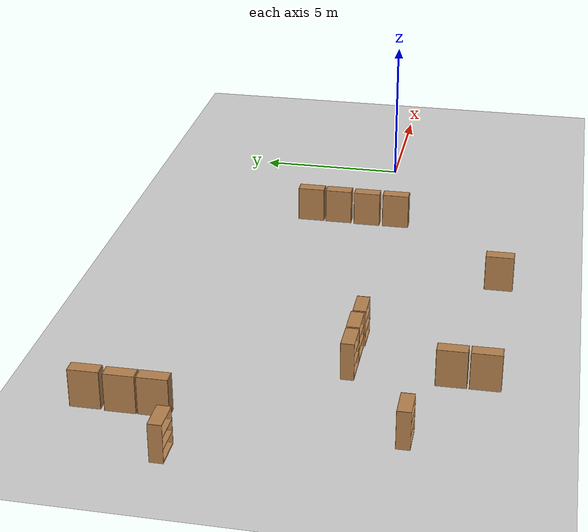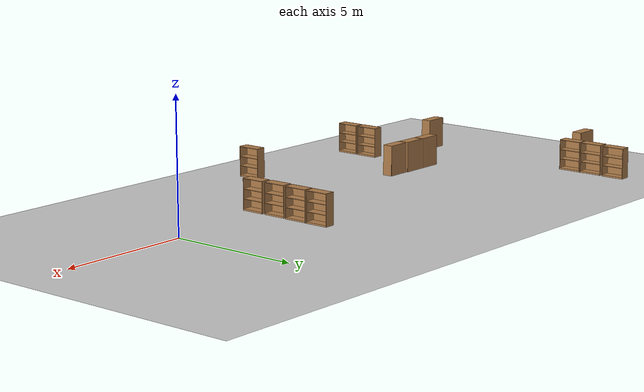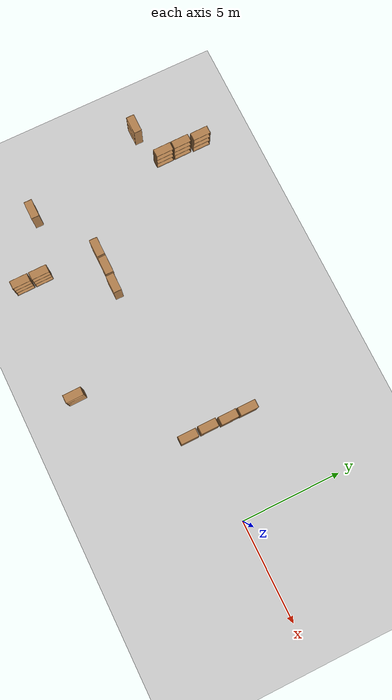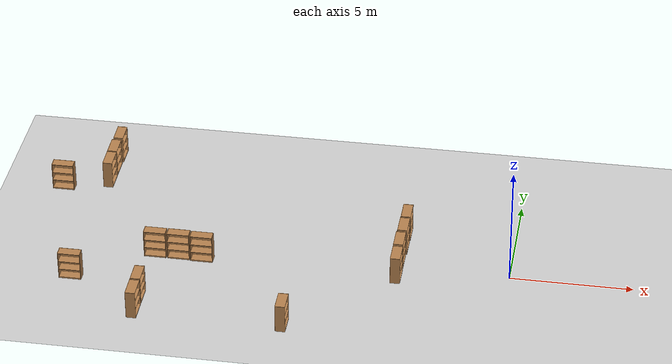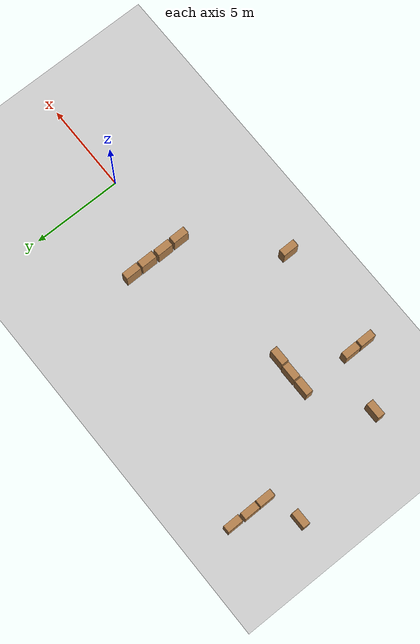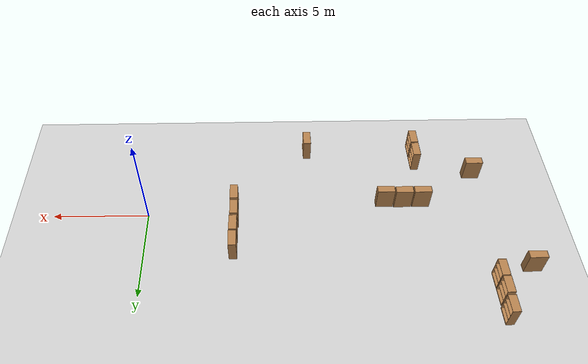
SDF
<sdf version="1.6">
 <world name="default">
  <model name="ground_plane">
   <static>1</static>
   <link name="link">
    <collision name="collision">
     <geometry><plane><normal>0 0 1</normal><size>100 100</size></plane></geometry>
     <surface>
      <contact><collide_bitmask>65535</collide_bitmask></contact>
      <friction><ode><mu>100</mu><mu2>50</mu2></ode></friction>
     </surface>
    </collision>
    <visual name="visual">
     <cast_shadows>0</cast_shadows>
     <geometry><plane><normal>0 0 1</normal><size>100 100</size></plane></geometry>
     <material>
      <script><uri>file://media/materials/scripts/gazebo.material</uri><name>Gazebo/Grey</name></script>
     </material>
    </visual>
   </link>
  </model>
  <model name="bookshelf_clone">
   <static>1</static>
   <link name="link">
    <inertial><mass>1</mass></inertial>
    <collision name="back">
     <pose>0 0.005 0.6 0 -0 0</pose>
     <geometry><box><size>0.9 0.01 1.2</size></box></geometry>
    </collision>
    <visual name="visual1">
     <pose>0 0.005 0.6 0 -0 0</pose>
     <geometry><box><size>0.9 0.01 1.2</size></box></geometry>
     <material>
      <script><uri>file://media/materials/scripts/gazebo.material</uri><name>Gazebo/Wood</name></script>
     </material>
    </visual>
    <collision name="left_side">
     <pose>0.45 -0.195 0.6 0 -0 0</pose>
     <geometry><box><size>0.02 0.4 1.2</size></box></geometry>
    </collision>
    <visual name="visual2">
     <pose>0.45 -0.195 0.6 0 -0 0</pose>
     <geometry><box><size>0.02 0.4 1.2</size></box></geometry>
     <material>
      <script><uri>file://media/materials/scripts/gazebo.material</uri><name>Gazebo/Wood</name></script>
     </material>
    </visual>
    <collision name="right_side">
     <pose>-0.45 -0.195 0.6 0 -0 0</pose>
     <geometry><box><size>0.02 0.4 1.2</size></box></geometry>
    </collision>
    <visual name="visual3">
     <pose>-0.45 -0.195 0.6 0 -0 0</pose>
     <geometry><box><size>0.02 0.4 1.2</size></box></geometry>
     <material>
      <script><uri>file://media/materials/scripts/gazebo.material</uri><name>Gazebo/Wood</name></script>
     </material>
    </visual>
    <collision name="bottom">
     <pose>0 -0.195 0.03 0 -0 0</pose>
     <geometry><box><size>0.88 0.4 0.06</size></box></geometry>
    </collision>
    <visual name="visual4">
     <pose>0 -0.195 0.03 0 -0 0</pose>
     <geometry><box><size>0.88 0.4 0.06</size></box></geometry>
     <material>
      <script><uri>file://media/materials/scripts/gazebo.material</uri><name>Gazebo/Wood</name></script>
     </material>
    </visual>
    <collision name="top">
     <pose>0 -0.195 1.19 0 -0 0</pose>
     <geometry><box><size>0.88 0.4 0.02</size></box></geometry>
    </collision>
    <visual name="visual5">
     <pose>0 -0.195 1.19 0 -0 0</pose>
     <geometry><box><size>0.88 0.4 0.02</size></box></geometry>
     <material>
      <script><uri>file://media/materials/scripts/gazebo.material</uri><name>Gazebo/Wood</name></script>
     </material>
    </visual>
    <collision name="low_shelf">
     <pose>0 -0.195 0.43 0 -0 0</pose>
     <geometry><box><size>0.88 0.4 0.02</size></box></geometry>
    </collision>
    <visual name="visual6">
     <pose>0 -0.195 0.43 0 -0 0</pose>
     <geometry><box><size>0.88 0.4 0.02</size></box></geometry>
     <material>
      <script><uri>file://media/materials/scripts/gazebo.material</uri><name>Gazebo/Wood</name></script>
     </material>
    </visual>
    <collision name="high_shelf">
     <pose>0 -0.195 0.8 0 -0 0</pose>
     <geometry><box><size>0.88 0.4 0.02</size></box></geometry>
    </collision>
    <visual name="visual7">
     <pose>0 -0.195 0.8 0 -0 0</pose>
     <geometry><box><size>0.88 0.4 0.02</size></box></geometry>
     <material>
      <script><uri>file://media/materials/scripts/gazebo.material</uri><name>Gazebo/Wood</name></script>
     </material>
    </visual>
   </link>
   <pose>-17.5274 -2.373 0 0 -0 0</pose>
  </model>
  <model name="bookshelf_clone_clone_0_clone_clone">
   <static>1</static>
   <link name="link">
    <inertial><mass>1</mass></inertial>
    <collision name="back">
     <pose>0 0.005 0.6 0 -0 0</pose>
     <geometry><box><size>0.9 0.01 1.2</size></box></geometry>
    </collision>
    <visual name="visual1">
     <pose>0 0.005 0.6 0 -0 0</pose>
     <geometry><box><size>0.9 0.01 1.2</size></box></geometry>
     <material>
      <script><uri>file://media/materials/scripts/gazebo.material</uri><name>Gazebo/Wood</name></script>
     </material>
    </visual>
    <collision name="left_side">
     <pose>0.45 -0.195 0.6 0 -0 0</pose>
     <geometry><box><size>0.02 0.4 1.2</size></box></geometry>
    </collision>
    <visual name="visual2">
     <pose>0.45 -0.195 0.6 0 -0 0</pose>
     <geometry><box><size>0.02 0.4 1.2</size></box></geometry>
     <material>
      <script><uri>file://media/materials/scripts/gazebo.material</uri><name>Gazebo/Wood</name></script>
     </material>
    </visual>
    <collision name="right_side">
     <pose>-0.45 -0.195 0.6 0 -0 0</pose>
     <geometry><box><size>0.02 0.4 1.2</size></box></geometry>
    </collision>
    <visual name="visual3">
     <pose>-0.45 -0.195 0.6 0 -0 0</pose>
     <geometry><box><size>0.02 0.4 1.2</size></box></geometry>
     <material>
      <script><uri>file://media/materials/scripts/gazebo.material</uri><name>Gazebo/Wood</name></script>
     </material>
    </visual>
    <collision name="bottom">
     <pose>0 -0.195 0.03 0 -0 0</pose>
     <geometry><box><size>0.88 0.4 0.06</size></box></geometry>
    </collision>
    <visual name="visual4">
     <pose>0 -0.195 0.03 0 -0 0</pose>
     <geometry><box><size>0.88 0.4 0.06</size></box></geometry>
     <material>
      <script><uri>file://media/materials/scripts/gazebo.material</uri><name>Gazebo/Wood</name></script>
     </material>
    </visual>
    <collision name="top">
     <pose>0 -0.195 1.19 0 -0 0</pose>
     <geometry><box><size>0.88 0.4 0.02</size></box></geometry>
    </collision>
    <visual name="visual5">
     <pose>0 -0.195 1.19 0 -0 0</pose>
     <geometry><box><size>0.88 0.4 0.02</size></box></geometry>
     <material>
      <script><uri>file://media/materials/scripts/gazebo.material</uri><name>Gazebo/Wood</name></script>
     </material>
    </visual>
    <collision name="low_shelf">
     <pose>0 -0.195 0.43 0 -0 0</pose>
     <geometry><box><size>0.88 0.4 0.02</size></box></geometry>
    </collision>
    <visual name="visual6">
     <pose>0 -0.195 0.43 0 -0 0</pose>
     <geometry><box><size>0.88 0.4 0.02</size></box></geometry>
     <material>
      <script><uri>file://media/materials/scripts/gazebo.material</uri><name>Gazebo/Wood</name></script>
     </material>
    </visual>
    <collision name="high_shelf">
     <pose>0 -0.195 0.8 0 -0 0</pose>
     <geometry><box><size>0.88 0.4 0.02</size></box></geometry>
    </collision>
    <visual name="visual7">
     <pose>0 -0.195 0.8 0 -0 0</pose>
     <geometry><box><size>0.88 0.4 0.02</size></box></geometry>
     <material>
      <script><uri>file://media/materials/scripts/gazebo.material</uri><name>Gazebo/Wood</name></script>
     </material>
    </visual>
   </link>
   <pose>-17.7016 5.36171 0 0 -0 1.58018</pose>
  </model>
  <model name="bookshelf_clone_clone_0_clone_clone_0">
   <static>1</static>
   <link name="link">
    <inertial><mass>1</mass></inertial>
    <collision name="back">
     <pose>0 0.005 0.6 0 -0 0</pose>
     <geometry><box><size>0.9 0.01 1.2</size></box></geometry>
    </collision>
    <visual name="visual1">
     <pose>0 0.005 0.6 0 -0 0</pose>
     <geometry><box><size>0.9 0.01 1.2</size></box></geometry>
     <material>
      <script><uri>file://media/materials/scripts/gazebo.material</uri><name>Gazebo/Wood</name></script>
     </material>
    </visual>
    <collision name="left_side">
     <pose>0.45 -0.195 0.6 0 -0 0</pose>
     <geometry><box><size>0.02 0.4 1.2</size></box></geometry>
    </collision>
    <visual name="visual2">
     <pose>0.45 -0.195 0.6 0 -0 0</pose>
     <geometry><box><size>0.02 0.4 1.2</size></box></geometry>
     <material>
      <script><uri>file://media/materials/scripts/gazebo.material</uri><name>Gazebo/Wood</name></script>
     </material>
    </visual>
    <collision name="right_side">
     <pose>-0.45 -0.195 0.6 0 -0 0</pose>
     <geometry><box><size>0.02 0.4 1.2</size></box></geometry>
    </collision>
    <visual name="visual3">
     <pose>-0.45 -0.195 0.6 0 -0 0</pose>
     <geometry><box><size>0.02 0.4 1.2</size></box></geometry>
     <material>
      <script><uri>file://media/materials/scripts/gazebo.material</uri><name>Gazebo/Wood</name></script>
     </material>
    </visual>
    <collision name="bottom">
     <pose>0 -0.195 0.03 0 -0 0</pose>
     <geometry><box><size>0.88 0.4 0.06</size></box></geometry>
    </collision>
    <visual name="visual4">
     <pose>0 -0.195 0.03 0 -0 0</pose>
     <geometry><box><size>0.88 0.4 0.06</size></box></geometry>
     <material>
      <script><uri>file://media/materials/scripts/gazebo.material</uri><name>Gazebo/Wood</name></script>
     </material>
    </visual>
    <collision name="top">
     <pose>0 -0.195 1.19 0 -0 0</pose>
     <geometry><box><size>0.88 0.4 0.02</size></box></geometry>
    </collision>
    <visual name="visual5">
     <pose>0 -0.195 1.19 0 -0 0</pose>
     <geometry><box><size>0.88 0.4 0.02</size></box></geometry>
     <material>
      <script><uri>file://media/materials/scripts/gazebo.material</uri><name>Gazebo/Wood</name></script>
     </material>
    </visual>
    <collision name="low_shelf">
     <pose>0 -0.195 0.43 0 -0 0</pose>
     <geometry><box><size>0.88 0.4 0.02</size></box></geometry>
    </collision>
    <visual name="visual6">
     <pose>0 -0.195 0.43 0 -0 0</pose>
     <geometry><box><size>0.88 0.4 0.02</size></box></geometry>
     <material>
      <script><uri>file://media/materials/scripts/gazebo.material</uri><name>Gazebo/Wood</name></script>
     </material>
    </visual>
    <collision name="high_shelf">
     <pose>0 -0.195 0.8 0 -0 0</pose>
     <geometry><box><size>0.88 0.4 0.02</size></box></geometry>
    </collision>
    <visual name="visual7">
     <pose>0 -0.195 0.8 0 -0 0</pose>
     <geometry><box><size>0.88 0.4 0.02</size></box></geometry>
     <material>
      <script><uri>file://media/materials/scripts/gazebo.material</uri><name>Gazebo/Wood</name></script>
     </material>
    </visual>
   </link>
   <pose>-17.6926 4.40593 0 0 -0 1.58018</pose>
  </model>
  <model name="bookshelf_clone_clone_0_clone_clone_1">
   <static>1</static>
   <link name="link">
    <inertial><mass>1</mass></inertial>
    <collision name="back">
     <pose>0 0.005 0.6 0 -0 0</pose>
     <geometry><box><size>0.9 0.01 1.2</size></box></geometry>
    </collision>
    <visual name="visual1">
     <pose>0 0.005 0.6 0 -0 0</pose>
     <geometry><box><size>0.9 0.01 1.2</size></box></geometry>
     <material>
      <script><uri>file://media/materials/scripts/gazebo.material</uri><name>Gazebo/Wood</name></script>
     </material>
    </visual>
    <collision name="left_side">
     <pose>0.45 -0.195 0.6 0 -0 0</pose>
     <geometry><box><size>0.02 0.4 1.2</size></box></geometry>
    </collision>
    <visual name="visual2">
     <pose>0.45 -0.195 0.6 0 -0 0</pose>
     <geometry><box><size>0.02 0.4 1.2</size></box></geometry>
     <material>
      <script><uri>file://media/materials/scripts/gazebo.material</uri><name>Gazebo/Wood</name></script>
     </material>
    </visual>
    <collision name="right_side">
     <pose>-0.45 -0.195 0.6 0 -0 0</pose>
     <geometry><box><size>0.02 0.4 1.2</size></box></geometry>
    </collision>
    <visual name="visual3">
     <pose>-0.45 -0.195 0.6 0 -0 0</pose>
     <geometry><box><size>0.02 0.4 1.2</size></box></geometry>
     <material>
      <script><uri>file://media/materials/scripts/gazebo.material</uri><name>Gazebo/Wood</name></script>
     </material>
    </visual>
    <collision name="bottom">
     <pose>0 -0.195 0.03 0 -0 0</pose>
     <geometry><box><size>0.88 0.4 0.06</size></box></geometry>
    </collision>
    <visual name="visual4">
     <pose>0 -0.195 0.03 0 -0 0</pose>
     <geometry><box><size>0.88 0.4 0.06</size></box></geometry>
     <material>
      <script><uri>file://media/materials/scripts/gazebo.material</uri><name>Gazebo/Wood</name></script>
     </material>
    </visual>
    <collision name="top">
     <pose>0 -0.195 1.19 0 -0 0</pose>
     <geometry><box><size>0.88 0.4 0.02</size></box></geometry>
    </collision>
    <visual name="visual5">
     <pose>0 -0.195 1.19 0 -0 0</pose>
     <geometry><box><size>0.88 0.4 0.02</size></box></geometry>
     <material>
      <script><uri>file://media/materials/scripts/gazebo.material</uri><name>Gazebo/Wood</name></script>
     </material>
    </visual>
    <collision name="low_shelf">
     <pose>0 -0.195 0.43 0 -0 0</pose>
     <geometry><box><size>0.88 0.4 0.02</size></box></geometry>
    </collision>
    <visual name="visual6">
     <pose>0 -0.195 0.43 0 -0 0</pose>
     <geometry><box><size>0.88 0.4 0.02</size></box></geometry>
     <material>
      <script><uri>file://media/materials/scripts/gazebo.material</uri><name>Gazebo/Wood</name></script>
     </material>
    </visual>
    <collision name="high_shelf">
     <pose>0 -0.195 0.8 0 -0 0</pose>
     <geometry><box><size>0.88 0.4 0.02</size></box></geometry>
    </collision>
    <visual name="visual7">
     <pose>0 -0.195 0.8 0 -0 0</pose>
     <geometry><box><size>0.88 0.4 0.02</size></box></geometry>
     <material>
      <script><uri>file://media/materials/scripts/gazebo.material</uri><name>Gazebo/Wood</name></script>
     </material>
    </visual>
   </link>
   <pose>-17.6741 6.39169 0 0 -0 1.58018</pose>
  </model>
  <model name="bookshelf_clone_clone_3">
   <static>1</static>
   <link name="link">
    <inertial><mass>1</mass></inertial>
    <collision name="back">
     <pose>0 0.005 0.6 0 -0 0</pose>
     <geometry><box><size>0.9 0.01 1.2</size></box></geometry>
    </collision>
    <visual name="visual1">
     <pose>0 0.005 0.6 0 -0 0</pose>
     <geometry><box><size>0.9 0.01 1.2</size></box></geometry>
     <material>
      <script><uri>file://media/materials/scripts/gazebo.material</uri><name>Gazebo/Wood</name></script>
     </material>
    </visual>
    <collision name="left_side">
     <pose>0.45 -0.195 0.6 0 -0 0</pose>
     <geometry><box><size>0.02 0.4 1.2</size></box></geometry>
    </collision>
    <visual name="visual2">
     <pose>0.45 -0.195 0.6 0 -0 0</pose>
     <geometry><box><size>0.02 0.4 1.2</size></box></geometry>
     <material>
      <script><uri>file://media/materials/scripts/gazebo.material</uri><name>Gazebo/Wood</name></script>
     </material>
    </visual>
    <collision name="right_side">
     <pose>-0.45 -0.195 0.6 0 -0 0</pose>
     <geometry><box><size>0.02 0.4 1.2</size></box></geometry>
    </collision>
    <visual name="visual3">
     <pose>-0.45 -0.195 0.6 0 -0 0</pose>
     <geometry><box><size>0.02 0.4 1.2</size></box></geometry>
     <material>
      <script><uri>file://media/materials/scripts/gazebo.material</uri><name>Gazebo/Wood</name></script>
     </material>
    </visual>
    <collision name="bottom">
     <pose>0 -0.195 0.03 0 -0 0</pose>
     <geometry><box><size>0.88 0.4 0.06</size></box></geometry>
    </collision>
    <visual name="visual4">
     <pose>0 -0.195 0.03 0 -0 0</pose>
     <geometry><box><size>0.88 0.4 0.06</size></box></geometry>
     <material>
      <script><uri>file://media/materials/scripts/gazebo.material</uri><name>Gazebo/Wood</name></script>
     </material>
    </visual>
    <collision name="top">
     <pose>0 -0.195 1.19 0 -0 0</pose>
     <geometry><box><size>0.88 0.4 0.02</size></box></geometry>
    </collision>
    <visual name="visual5">
     <pose>0 -0.195 1.19 0 -0 0</pose>
     <geometry><box><size>0.88 0.4 0.02</size></box></geometry>
     <material>
      <script><uri>file://media/materials/scripts/gazebo.material</uri><name>Gazebo/Wood</name></script>
     </material>
    </visual>
    <collision name="low_shelf">
     <pose>0 -0.195 0.43 0 -0 0</pose>
     <geometry><box><size>0.88 0.4 0.02</size></box></geometry>
    </collision>
    <visual name="visual6">
     <pose>0 -0.195 0.43 0 -0 0</pose>
     <geometry><box><size>0.88 0.4 0.02</size></box></geometry>
     <material>
      <script><uri>file://media/materials/scripts/gazebo.material</uri><name>Gazebo/Wood</name></script>
     </material>
    </visual>
    <collision name="high_shelf">
     <pose>0 -0.195 0.8 0 -0 0</pose>
     <geometry><box><size>0.88 0.4 0.02</size></box></geometry>
    </collision>
    <visual name="visual7">
     <pose>0 -0.195 0.8 0 -0 0</pose>
     <geometry><box><size>0.88 0.4 0.02</size></box></geometry>
     <material>
      <script><uri>file://media/materials/scripts/gazebo.material</uri><name>Gazebo/Wood</name></script>
     </material>
    </visual>
   </link>
   <pose>-19.329 3.89641 0 0 -0 0</pose>
  </model>
  <model name="bookshelf_clone_clone_0_clone_clone_0_clone">
   <static>1</static>
   <link name="link">
    <inertial><mass>1</mass></inertial>
    <collision name="back">
     <pose>0 0.005 0.6 0 -0 0</pose>
     <geometry><box><size>0.9 0.01 1.2</size></box></geometry>
    </collision>
    <visual name="visual1">
     <pose>0 0.005 0.6 0 -0 0</pose>
     <geometry><box><size>0.9 0.01 1.2</size></box></geometry>
     <material>
      <script><uri>file://media/materials/scripts/gazebo.material</uri><name>Gazebo/Wood</name></script>
     </material>
    </visual>
    <collision name="left_side">
     <pose>0.45 -0.195 0.6 0 -0 0</pose>
     <geometry><box><size>0.02 0.4 1.2</size></box></geometry>
    </collision>
    <visual name="visual2">
     <pose>0.45 -0.195 0.6 0 -0 0</pose>
     <geometry><box><size>0.02 0.4 1.2</size></box></geometry>
     <material>
      <script><uri>file://media/materials/scripts/gazebo.material</uri><name>Gazebo/Wood</name></script>
     </material>
    </visual>
    <collision name="right_side">
     <pose>-0.45 -0.195 0.6 0 -0 0</pose>
     <geometry><box><size>0.02 0.4 1.2</size></box></geometry>
    </collision>
    <visual name="visual3">
     <pose>-0.45 -0.195 0.6 0 -0 0</pose>
     <geometry><box><size>0.02 0.4 1.2</size></box></geometry>
     <material>
      <script><uri>file://media/materials/scripts/gazebo.material</uri><name>Gazebo/Wood</name></script>
     </material>
    </visual>
    <collision name="bottom">
     <pose>0 -0.195 0.03 0 -0 0</pose>
     <geometry><box><size>0.88 0.4 0.06</size></box></geometry>
    </collision>
    <visual name="visual4">
     <pose>0 -0.195 0.03 0 -0 0</pose>
     <geometry><box><size>0.88 0.4 0.06</size></box></geometry>
     <material>
      <script><uri>file://media/materials/scripts/gazebo.material</uri><name>Gazebo/Wood</name></script>
     </material>
    </visual>
    <collision name="top">
     <pose>0 -0.195 1.19 0 -0 0</pose>
     <geometry><box><size>0.88 0.4 0.02</size></box></geometry>
    </collision>
    <visual name="visual5">
     <pose>0 -0.195 1.19 0 -0 0</pose>
     <geometry><box><size>0.88 0.4 0.02</size></box></geometry>
     <material>
      <script><uri>file://media/materials/scripts/gazebo.material</uri><name>Gazebo/Wood</name></script>
     </material>
    </visual>
    <collision name="low_shelf">
     <pose>0 -0.195 0.43 0 -0 0</pose>
     <geometry><box><size>0.88 0.4 0.02</size></box></geometry>
    </collision>
    <visual name="visual6">
     <pose>0 -0.195 0.43 0 -0 0</pose>
     <geometry><box><size>0.88 0.4 0.02</size></box></geometry>
     <material>
      <script><uri>file://media/materials/scripts/gazebo.material</uri><name>Gazebo/Wood</name></script>
     </material>
    </visual>
    <collision name="high_shelf">
     <pose>0 -0.195 0.8 0 -0 0</pose>
     <geometry><box><size>0.88 0.4 0.02</size></box></geometry>
    </collision>
    <visual name="visual7">
     <pose>0 -0.195 0.8 0 -0 0</pose>
     <geometry><box><size>0.88 0.4 0.02</size></box></geometry>
     <material>
      <script><uri>file://media/materials/scripts/gazebo.material</uri><name>Gazebo/Wood</name></script>
     </material>
    </visual>
   </link>
   <pose>-14.7167 -3.5316 0 0 -0 1.58018</pose>
  </model>
  <model name="bookshelf_clone_clone_0_clone_clone_0_clone_0">
   <static>1</static>
   <link name="link">
    <inertial><mass>1</mass></inertial>
    <collision name="back">
     <pose>0 0.005 0.6 0 -0 0</pose>
     <geometry><box><size>0.9 0.01 1.2</size></box></geometry>
    </collision>
    <visual name="visual1">
     <pose>0 0.005 0.6 0 -0 0</pose>
     <geometry><box><size>0.9 0.01 1.2</size></box></geometry>
     <material>
      <script><uri>file://media/materials/scripts/gazebo.material</uri><name>Gazebo/Wood</name></script>
     </material>
    </visual>
    <collision name="left_side">
     <pose>0.45 -0.195 0.6 0 -0 0</pose>
     <geometry><box><size>0.02 0.4 1.2</size></box></geometry>
    </collision>
    <visual name="visual2">
     <pose>0.45 -0.195 0.6 0 -0 0</pose>
     <geometry><box><size>0.02 0.4 1.2</size></box></geometry>
     <material>
      <script><uri>file://media/materials/scripts/gazebo.material</uri><name>Gazebo/Wood</name></script>
     </material>
    </visual>
    <collision name="right_side">
     <pose>-0.45 -0.195 0.6 0 -0 0</pose>
     <geometry><box><size>0.02 0.4 1.2</size></box></geometry>
    </collision>
    <visual name="visual3">
     <pose>-0.45 -0.195 0.6 0 -0 0</pose>
     <geometry><box><size>0.02 0.4 1.2</size></box></geometry>
     <material>
      <script><uri>file://media/materials/scripts/gazebo.material</uri><name>Gazebo/Wood</name></script>
     </material>
    </visual>
    <collision name="bottom">
     <pose>0 -0.195 0.03 0 -0 0</pose>
     <geometry><box><size>0.88 0.4 0.06</size></box></geometry>
    </collision>
    <visual name="visual4">
     <pose>0 -0.195 0.03 0 -0 0</pose>
     <geometry><box><size>0.88 0.4 0.06</size></box></geometry>
     <material>
      <script><uri>file://media/materials/scripts/gazebo.material</uri><name>Gazebo/Wood</name></script>
     </material>
    </visual>
    <collision name="top">
     <pose>0 -0.195 1.19 0 -0 0</pose>
     <geometry><box><size>0.88 0.4 0.02</size></box></geometry>
    </collision>
    <visual name="visual5">
     <pose>0 -0.195 1.19 0 -0 0</pose>
     <geometry><box><size>0.88 0.4 0.02</size></box></geometry>
     <material>
      <script><uri>file://media/materials/scripts/gazebo.material</uri><name>Gazebo/Wood</name></script>
     </material>
    </visual>
    <collision name="low_shelf">
     <pose>0 -0.195 0.43 0 -0 0</pose>
     <geometry><box><size>0.88 0.4 0.02</size></box></geometry>
    </collision>
    <visual name="visual6">
     <pose>0 -0.195 0.43 0 -0 0</pose>
     <geometry><box><size>0.88 0.4 0.02</size></box></geometry>
     <material>
      <script><uri>file://media/materials/scripts/gazebo.material</uri><name>Gazebo/Wood</name></script>
     </material>
    </visual>
    <collision name="high_shelf">
     <pose>0 -0.195 0.8 0 -0 0</pose>
     <geometry><box><size>0.88 0.4 0.02</size></box></geometry>
    </collision>
    <visual name="visual7">
     <pose>0 -0.195 0.8 0 -0 0</pose>
     <geometry><box><size>0.88 0.4 0.02</size></box></geometry>
     <material>
      <script><uri>file://media/materials/scripts/gazebo.material</uri><name>Gazebo/Wood</name></script>
     </material>
    </visual>
   </link>
   <pose>-14.7086 -4.5102 0 0 -0 1.58018</pose>
  </model>
  <model name="bookshelf_clone_clone_2_clone">
   <static>1</static>
   <link name="link">
    <inertial><mass>1</mass></inertial>
    <collision name="back">
     <pose>0 0.005 0.6 0 -0 0</pose>
     <geometry><box><size>0.9 0.01 1.2</size></box></geometry>
    </collision>
    <visual name="visual1">
     <pose>0 0.005 0.6 0 -0 0</pose>
     <geometry><box><size>0.9 0.01 1.2</size></box></geometry>
     <material>
      <script><uri>file://media/materials/scripts/gazebo.material</uri><name>Gazebo/Wood</name></script>
     </material>
    </visual>
    <collision name="left_side">
     <pose>0.45 -0.195 0.6 0 -0 0</pose>
     <geometry><box><size>0.02 0.4 1.2</size></box></geometry>
    </collision>
    <visual name="visual2">
     <pose>0.45 -0.195 0.6 0 -0 0</pose>
     <geometry><box><size>0.02 0.4 1.2</size></box></geometry>
     <material>
      <script><uri>file://media/materials/scripts/gazebo.material</uri><name>Gazebo/Wood</name></script>
     </material>
    </visual>
    <collision name="right_side">
     <pose>-0.45 -0.195 0.6 0 -0 0</pose>
     <geometry><box><size>0.02 0.4 1.2</size></box></geometry>
    </collision>
    <visual name="visual3">
     <pose>-0.45 -0.195 0.6 0 -0 0</pose>
     <geometry><box><size>0.02 0.4 1.2</size></box></geometry>
     <material>
      <script><uri>file://media/materials/scripts/gazebo.material</uri><name>Gazebo/Wood</name></script>
     </material>
    </visual>
    <collision name="bottom">
     <pose>0 -0.195 0.03 0 -0 0</pose>
     <geometry><box><size>0.88 0.4 0.06</size></box></geometry>
    </collision>
    <visual name="visual4">
     <pose>0 -0.195 0.03 0 -0 0</pose>
     <geometry><box><size>0.88 0.4 0.06</size></box></geometry>
     <material>
      <script><uri>file://media/materials/scripts/gazebo.material</uri><name>Gazebo/Wood</name></script>
     </material>
    </visual>
    <collision name="top">
     <pose>0 -0.195 1.19 0 -0 0</pose>
     <geometry><box><size>0.88 0.4 0.02</size></box></geometry>
    </collision>
    <visual name="visual5">
     <pose>0 -0.195 1.19 0 -0 0</pose>
     <geometry><box><size>0.88 0.4 0.02</size></box></geometry>
     <material>
      <script><uri>file://media/materials/scripts/gazebo.material</uri><name>Gazebo/Wood</name></script>
     </material>
    </visual>
    <collision name="low_shelf">
     <pose>0 -0.195 0.43 0 -0 0</pose>
     <geometry><box><size>0.88 0.4 0.02</size></box></geometry>
    </collision>
    <visual name="visual6">
     <pose>0 -0.195 0.43 0 -0 0</pose>
     <geometry><box><size>0.88 0.4 0.02</size></box></geometry>
     <material>
      <script><uri>file://media/materials/scripts/gazebo.material</uri><name>Gazebo/Wood</name></script>
     </material>
    </visual>
    <collision name="high_shelf">
     <pose>0 -0.195 0.8 0 -0 0</pose>
     <geometry><box><size>0.88 0.4 0.02</size></box></geometry>
    </collision>
    <visual name="visual7">
     <pose>0 -0.195 0.8 0 -0 0</pose>
     <geometry><box><size>0.88 0.4 0.02</size></box></geometry>
     <material>
      <script><uri>file://media/materials/scripts/gazebo.material</uri><name>Gazebo/Wood</name></script>
     </material>
    </visual>
   </link>
   <pose>-14.4458 -0.359166 0 0 -0 0</pose>
  </model>
  <model name="bookshelf_clone_clone_2_clone_0">
   <static>1</static>
   <link name="link">
    <inertial><mass>1</mass></inertial>
    <collision name="back">
     <pose>0 0.005 0.6 0 -0 0</pose>
     <geometry><box><size>0.9 0.01 1.2</size></box></geometry>
    </collision>
    <visual name="visual1">
     <pose>0 0.005 0.6 0 -0 0</pose>
     <geometry><box><size>0.9 0.01 1.2</size></box></geometry>
     <material>
      <script><uri>file://media/materials/scripts/gazebo.material</uri><name>Gazebo/Wood</name></script>
     </material>
    </visual>
    <collision name="left_side">
     <pose>0.45 -0.195 0.6 0 -0 0</pose>
     <geometry><box><size>0.02 0.4 1.2</size></box></geometry>
    </collision>
    <visual name="visual2">
     <pose>0.45 -0.195 0.6 0 -0 0</pose>
     <geometry><box><size>0.02 0.4 1.2</size></box></geometry>
     <material>
      <script><uri>file://media/materials/scripts/gazebo.material</uri><name>Gazebo/Wood</name></script>
     </material>
    </visual>
    <collision name="right_side">
     <pose>-0.45 -0.195 0.6 0 -0 0</pose>
     <geometry><box><size>0.02 0.4 1.2</size></box></geometry>
    </collision>
    <visual name="visual3">
     <pose>-0.45 -0.195 0.6 0 -0 0</pose>
     <geometry><box><size>0.02 0.4 1.2</size></box></geometry>
     <material>
      <script><uri>file://media/materials/scripts/gazebo.material</uri><name>Gazebo/Wood</name></script>
     </material>
    </visual>
    <collision name="bottom">
     <pose>0 -0.195 0.03 0 -0 0</pose>
     <geometry><box><size>0.88 0.4 0.06</size></box></geometry>
    </collision>
    <visual name="visual4">
     <pose>0 -0.195 0.03 0 -0 0</pose>
     <geometry><box><size>0.88 0.4 0.06</size></box></geometry>
     <material>
      <script><uri>file://media/materials/scripts/gazebo.material</uri><name>Gazebo/Wood</name></script>
     </material>
    </visual>
    <collision name="top">
     <pose>0 -0.195 1.19 0 -0 0</pose>
     <geometry><box><size>0.88 0.4 0.02</size></box></geometry>
    </collision>
    <visual name="visual5">
     <pose>0 -0.195 1.19 0 -0 0</pose>
     <geometry><box><size>0.88 0.4 0.02</size></box></geometry>
     <material>
      <script><uri>file://media/materials/scripts/gazebo.material</uri><name>Gazebo/Wood</name></script>
     </material>
    </visual>
    <collision name="low_shelf">
     <pose>0 -0.195 0.43 0 -0 0</pose>
     <geometry><box><size>0.88 0.4 0.02</size></box></geometry>
    </collision>
    <visual name="visual6">
     <pose>0 -0.195 0.43 0 -0 0</pose>
     <geometry><box><size>0.88 0.4 0.02</size></box></geometry>
     <material>
      <script><uri>file://media/materials/scripts/gazebo.material</uri><name>Gazebo/Wood</name></script>
     </material>
    </visual>
    <collision name="high_shelf">
     <pose>0 -0.195 0.8 0 -0 0</pose>
     <geometry><box><size>0.88 0.4 0.02</size></box></geometry>
    </collision>
    <visual name="visual7">
     <pose>0 -0.195 0.8 0 -0 0</pose>
     <geometry><box><size>0.88 0.4 0.02</size></box></geometry>
     <material>
      <script><uri>file://media/materials/scripts/gazebo.material</uri><name>Gazebo/Wood</name></script>
     </material>
    </visual>
   </link>
   <pose>-13.4772 -0.35819 0 0 -0 0</pose>
  </model>
  <model name="bookshelf_clone_clone_2_clone_1">
   <static>1</static>
   <link name="link">
    <inertial><mass>1</mass></inertial>
    <collision name="back">
     <pose>0 0.005 0.6 0 -0 0</pose>
     <geometry><box><size>0.9 0.01 1.2</size></box></geometry>
    </collision>
    <visual name="visual1">
     <pose>0 0.005 0.6 0 -0 0</pose>
     <geometry><box><size>0.9 0.01 1.2</size></box></geometry>
     <material>
      <script><uri>file://media/materials/scripts/gazebo.material</uri><name>Gazebo/Wood</name></script>
     </material>
    </visual>
    <collision name="left_side">
     <pose>0.45 -0.195 0.6 0 -0 0</pose>
     <geometry><box><size>0.02 0.4 1.2</size></box></geometry>
    </collision>
    <visual name="visual2">
     <pose>0.45 -0.195 0.6 0 -0 0</pose>
     <geometry><box><size>0.02 0.4 1.2</size></box></geometry>
     <material>
      <script><uri>file://media/materials/scripts/gazebo.material</uri><name>Gazebo/Wood</name></script>
     </material>
    </visual>
    <collision name="right_side">
     <pose>-0.45 -0.195 0.6 0 -0 0</pose>
     <geometry><box><size>0.02 0.4 1.2</size></box></geometry>
    </collision>
    <visual name="visual3">
     <pose>-0.45 -0.195 0.6 0 -0 0</pose>
     <geometry><box><size>0.02 0.4 1.2</size></box></geometry>
     <material>
      <script><uri>file://media/materials/scripts/gazebo.material</uri><name>Gazebo/Wood</name></script>
     </material>
    </visual>
    <collision name="bottom">
     <pose>0 -0.195 0.03 0 -0 0</pose>
     <geometry><box><size>0.88 0.4 0.06</size></box></geometry>
    </collision>
    <visual name="visual4">
     <pose>0 -0.195 0.03 0 -0 0</pose>
     <geometry><box><size>0.88 0.4 0.06</size></box></geometry>
     <material>
      <script><uri>file://media/materials/scripts/gazebo.material</uri><name>Gazebo/Wood</name></script>
     </material>
    </visual>
    <collision name="top">
     <pose>0 -0.195 1.19 0 -0 0</pose>
     <geometry><box><size>0.88 0.4 0.02</size></box></geometry>
    </collision>
    <visual name="visual5">
     <pose>0 -0.195 1.19 0 -0 0</pose>
     <geometry><box><size>0.88 0.4 0.02</size></box></geometry>
     <material>
      <script><uri>file://media/materials/scripts/gazebo.material</uri><name>Gazebo/Wood</name></script>
     </material>
    </visual>
    <collision name="low_shelf">
     <pose>0 -0.195 0.43 0 -0 0</pose>
     <geometry><box><size>0.88 0.4 0.02</size></box></geometry>
    </collision>
    <visual name="visual6">
     <pose>0 -0.195 0.43 0 -0 0</pose>
     <geometry><box><size>0.88 0.4 0.02</size></box></geometry>
     <material>
      <script><uri>file://media/materials/scripts/gazebo.material</uri><name>Gazebo/Wood</name></script>
     </material>
    </visual>
    <collision name="high_shelf">
     <pose>0 -0.195 0.8 0 -0 0</pose>
     <geometry><box><size>0.88 0.4 0.02</size></box></geometry>
    </collision>
    <visual name="visual7">
     <pose>0 -0.195 0.8 0 -0 0</pose>
     <geometry><box><size>0.88 0.4 0.02</size></box></geometry>
     <material>
      <script><uri>file://media/materials/scripts/gazebo.material</uri><name>Gazebo/Wood</name></script>
     </material>
    </visual>
   </link>
   <pose>-12.5139 -0.395559 0 0 -0 0</pose>
  </model>
  <model name="bookshelf_clone_clone_0_clone_clone_0_clone_2">
   <static>1</static>
   <link name="link">
    <inertial><mass>1</mass></inertial>
    <collision name="back">
     <pose>0 0.005 0.6 0 -0 0</pose>
     <geometry><box><size>0.9 0.01 1.2</size></box></geometry>
    </collision>
    <visual name="visual1">
     <pose>0 0.005 0.6 0 -0 0</pose>
     <geometry><box><size>0.9 0.01 1.2</size></box></geometry>
     <material>
      <script><uri>file://media/materials/scripts/gazebo.material</uri><name>Gazebo/Wood</name></script>
     </material>
    </visual>
    <collision name="left_side">
     <pose>0.45 -0.195 0.6 0 -0 0</pose>
     <geometry><box><size>0.02 0.4 1.2</size></box></geometry>
    </collision>
    <visual name="visual2">
     <pose>0.45 -0.195 0.6 0 -0 0</pose>
     <geometry><box><size>0.02 0.4 1.2</size></box></geometry>
     <material>
      <script><uri>file://media/materials/scripts/gazebo.material</uri><name>Gazebo/Wood</name></script>
     </material>
    </visual>
    <collision name="right_side">
     <pose>-0.45 -0.195 0.6 0 -0 0</pose>
     <geometry><box><size>0.02 0.4 1.2</size></box></geometry>
    </collision>
    <visual name="visual3">
     <pose>-0.45 -0.195 0.6 0 -0 0</pose>
     <geometry><box><size>0.02 0.4 1.2</size></box></geometry>
     <material>
      <script><uri>file://media/materials/scripts/gazebo.material</uri><name>Gazebo/Wood</name></script>
     </material>
    </visual>
    <collision name="bottom">
     <pose>0 -0.195 0.03 0 -0 0</pose>
     <geometry><box><size>0.88 0.4 0.06</size></box></geometry>
    </collision>
    <visual name="visual4">
     <pose>0 -0.195 0.03 0 -0 0</pose>
     <geometry><box><size>0.88 0.4 0.06</size></box></geometry>
     <material>
      <script><uri>file://media/materials/scripts/gazebo.material</uri><name>Gazebo/Wood</name></script>
     </material>
    </visual>
    <collision name="top">
     <pose>0 -0.195 1.19 0 -0 0</pose>
     <geometry><box><size>0.88 0.4 0.02</size></box></geometry>
    </collision>
    <visual name="visual5">
     <pose>0 -0.195 1.19 0 -0 0</pose>
     <geometry><box><size>0.88 0.4 0.02</size></box></geometry>
     <material>
      <script><uri>file://media/materials/scripts/gazebo.material</uri><name>Gazebo/Wood</name></script>
     </material>
    </visual>
    <collision name="low_shelf">
     <pose>0 -0.195 0.43 0 -0 0</pose>
     <geometry><box><size>0.88 0.4 0.02</size></box></geometry>
    </collision>
    <visual name="visual6">
     <pose>0 -0.195 0.43 0 -0 0</pose>
     <geometry><box><size>0.88 0.4 0.02</size></box></geometry>
     <material>
      <script><uri>file://media/materials/scripts/gazebo.material</uri><name>Gazebo/Wood</name></script>
     </material>
    </visual>
    <collision name="high_shelf">
     <pose>0 -0.195 0.8 0 -0 0</pose>
     <geometry><box><size>0.88 0.4 0.02</size></box></geometry>
    </collision>
    <visual name="visual7">
     <pose>0 -0.195 0.8 0 -0 0</pose>
     <geometry><box><size>0.88 0.4 0.02</size></box></geometry>
     <material>
      <script><uri>file://media/materials/scripts/gazebo.material</uri><name>Gazebo/Wood</name></script>
     </material>
    </visual>
   </link>
   <pose>-4.71181 2.42279 0 0 -0 1.58018</pose>
  </model>
  <model name="bookshelf_clone_clone_0_clone_clone_0_clone_3">
   <static>1</static>
   <link name="link">
    <inertial><mass>1</mass></inertial>
    <collision name="back">
     <pose>0 0.005 0.6 0 -0 0</pose>
     <geometry><box><size>0.9 0.01 1.2</size></box></geometry>
    </collision>
    <visual name="visual1">
     <pose>0 0.005 0.6 0 -0 0</pose>
     <geometry><box><size>0.9 0.01 1.2</size></box></geometry>
     <material>
      <script><uri>file://media/materials/scripts/gazebo.material</uri><name>Gazebo/Wood</name></script>
     </material>
    </visual>
    <collision name="left_side">
     <pose>0.45 -0.195 0.6 0 -0 0</pose>
     <geometry><box><size>0.02 0.4 1.2</size></box></geometry>
    </collision>
    <visual name="visual2">
     <pose>0.45 -0.195 0.6 0 -0 0</pose>
     <geometry><box><size>0.02 0.4 1.2</size></box></geometry>
     <material>
      <script><uri>file://media/materials/scripts/gazebo.material</uri><name>Gazebo/Wood</name></script>
     </material>
    </visual>
    <collision name="right_side">
     <pose>-0.45 -0.195 0.6 0 -0 0</pose>
     <geometry><box><size>0.02 0.4 1.2</size></box></geometry>
    </collision>
    <visual name="visual3">
     <pose>-0.45 -0.195 0.6 0 -0 0</pose>
     <geometry><box><size>0.02 0.4 1.2</size></box></geometry>
     <material>
      <script><uri>file://media/materials/scripts/gazebo.material</uri><name>Gazebo/Wood</name></script>
     </material>
    </visual>
    <collision name="bottom">
     <pose>0 -0.195 0.03 0 -0 0</pose>
     <geometry><box><size>0.88 0.4 0.06</size></box></geometry>
    </collision>
    <visual name="visual4">
     <pose>0 -0.195 0.03 0 -0 0</pose>
     <geometry><box><size>0.88 0.4 0.06</size></box></geometry>
     <material>
      <script><uri>file://media/materials/scripts/gazebo.material</uri><name>Gazebo/Wood</name></script>
     </material>
    </visual>
    <collision name="top">
     <pose>0 -0.195 1.19 0 -0 0</pose>
     <geometry><box><size>0.88 0.4 0.02</size></box></geometry>
    </collision>
    <visual name="visual5">
     <pose>0 -0.195 1.19 0 -0 0</pose>
     <geometry><box><size>0.88 0.4 0.02</size></box></geometry>
     <material>
      <script><uri>file://media/materials/scripts/gazebo.material</uri><name>Gazebo/Wood</name></script>
     </material>
    </visual>
    <collision name="low_shelf">
     <pose>0 -0.195 0.43 0 -0 0</pose>
     <geometry><box><size>0.88 0.4 0.02</size></box></geometry>
    </collision>
    <visual name="visual6">
     <pose>0 -0.195 0.43 0 -0 0</pose>
     <geometry><box><size>0.88 0.4 0.02</size></box></geometry>
     <material>
      <script><uri>file://media/materials/scripts/gazebo.material</uri><name>Gazebo/Wood</name></script>
     </material>
    </visual>
    <collision name="high_shelf">
     <pose>0 -0.195 0.8 0 -0 0</pose>
     <geometry><box><size>0.88 0.4 0.02</size></box></geometry>
    </collision>
    <visual name="visual7">
     <pose>0 -0.195 0.8 0 -0 0</pose>
     <geometry><box><size>0.88 0.4 0.02</size></box></geometry>
     <material>
      <script><uri>file://media/materials/scripts/gazebo.material</uri><name>Gazebo/Wood</name></script>
     </material>
    </visual>
   </link>
   <pose>-4.71568 1.4428 0 0 -0 1.58018</pose>
  </model>
  <model name="bookshelf_clone_clone_0_clone_clone_0_clone_4">
   <static>1</static>
   <link name="link">
    <inertial><mass>1</mass></inertial>
    <collision name="back">
     <pose>0 0.005 0.6 0 -0 0</pose>
     <geometry><box><size>0.9 0.01 1.2</size></box></geometry>
    </collision>
    <visual name="visual1">
     <pose>0 0.005 0.6 0 -0 0</pose>
     <geometry><box><size>0.9 0.01 1.2</size></box></geometry>
     <material>
      <script><uri>file://media/materials/scripts/gazebo.material</uri><name>Gazebo/Wood</name></script>
     </material>
    </visual>
    <collision name="left_side">
     <pose>0.45 -0.195 0.6 0 -0 0</pose>
     <geometry><box><size>0.02 0.4 1.2</size></box></geometry>
    </collision>
    <visual name="visual2">
     <pose>0.45 -0.195 0.6 0 -0 0</pose>
     <geometry><box><size>0.02 0.4 1.2</size></box></geometry>
     <material>
      <script><uri>file://media/materials/scripts/gazebo.material</uri><name>Gazebo/Wood</name></script>
     </material>
    </visual>
    <collision name="right_side">
     <pose>-0.45 -0.195 0.6 0 -0 0</pose>
     <geometry><box><size>0.02 0.4 1.2</size></box></geometry>
    </collision>
    <visual name="visual3">
     <pose>-0.45 -0.195 0.6 0 -0 0</pose>
     <geometry><box><size>0.02 0.4 1.2</size></box></geometry>
     <material>
      <script><uri>file://media/materials/scripts/gazebo.material</uri><name>Gazebo/Wood</name></script>
     </material>
    </visual>
    <collision name="bottom">
     <pose>0 -0.195 0.03 0 -0 0</pose>
     <geometry><box><size>0.88 0.4 0.06</size></box></geometry>
    </collision>
    <visual name="visual4">
     <pose>0 -0.195 0.03 0 -0 0</pose>
     <geometry><box><size>0.88 0.4 0.06</size></box></geometry>
     <material>
      <script><uri>file://media/materials/scripts/gazebo.material</uri><name>Gazebo/Wood</name></script>
     </material>
    </visual>
    <collision name="top">
     <pose>0 -0.195 1.19 0 -0 0</pose>
     <geometry><box><size>0.88 0.4 0.02</size></box></geometry>
    </collision>
    <visual name="visual5">
     <pose>0 -0.195 1.19 0 -0 0</pose>
     <geometry><box><size>0.88 0.4 0.02</size></box></geometry>
     <material>
      <script><uri>file://media/materials/scripts/gazebo.material</uri><name>Gazebo/Wood</name></script>
     </material>
    </visual>
    <collision name="low_shelf">
     <pose>0 -0.195 0.43 0 -0 0</pose>
     <geometry><box><size>0.88 0.4 0.02</size></box></geometry>
    </collision>
    <visual name="visual6">
     <pose>0 -0.195 0.43 0 -0 0</pose>
     <geometry><box><size>0.88 0.4 0.02</size></box></geometry>
     <material>
      <script><uri>file://media/materials/scripts/gazebo.material</uri><name>Gazebo/Wood</name></script>
     </material>
    </visual>
    <collision name="high_shelf">
     <pose>0 -0.195 0.8 0 -0 0</pose>
     <geometry><box><size>0.88 0.4 0.02</size></box></geometry>
    </collision>
    <visual name="visual7">
     <pose>0 -0.195 0.8 0 -0 0</pose>
     <geometry><box><size>0.88 0.4 0.02</size></box></geometry>
     <material>
      <script><uri>file://media/materials/scripts/gazebo.material</uri><name>Gazebo/Wood</name></script>
     </material>
    </visual>
   </link>
   <pose>-4.73977 0.422899 0 0 -0 1.58018</pose>
  </model>
  <model name="bookshelf_clone_clone_0_clone_clone_0_clone_5">
   <static>1</static>
   <link name="link">
    <inertial><mass>1</mass></inertial>
    <collision name="back">
     <pose>0 0.005 0.6 0 -0 0</pose>
     <geometry><box><size>0.9 0.01 1.2</size></box></geometry>
    </collision>
    <visual name="visual1">
     <pose>0 0.005 0.6 0 -0 0</pose>
     <geometry><box><size>0.9 0.01 1.2</size></box></geometry>
     <material>
      <script><uri>file://media/materials/scripts/gazebo.material</uri><name>Gazebo/Wood</name></script>
     </material>
    </visual>
    <collision name="left_side">
     <pose>0.45 -0.195 0.6 0 -0 0</pose>
     <geometry><box><size>0.02 0.4 1.2</size></box></geometry>
    </collision>
    <visual name="visual2">
     <pose>0.45 -0.195 0.6 0 -0 0</pose>
     <geometry><box><size>0.02 0.4 1.2</size></box></geometry>
     <material>
      <script><uri>file://media/materials/scripts/gazebo.material</uri><name>Gazebo/Wood</name></script>
     </material>
    </visual>
    <collision name="right_side">
     <pose>-0.45 -0.195 0.6 0 -0 0</pose>
     <geometry><box><size>0.02 0.4 1.2</size></box></geometry>
    </collision>
    <visual name="visual3">
     <pose>-0.45 -0.195 0.6 0 -0 0</pose>
     <geometry><box><size>0.02 0.4 1.2</size></box></geometry>
     <material>
      <script><uri>file://media/materials/scripts/gazebo.material</uri><name>Gazebo/Wood</name></script>
     </material>
    </visual>
    <collision name="bottom">
     <pose>0 -0.195 0.03 0 -0 0</pose>
     <geometry><box><size>0.88 0.4 0.06</size></box></geometry>
    </collision>
    <visual name="visual4">
     <pose>0 -0.195 0.03 0 -0 0</pose>
     <geometry><box><size>0.88 0.4 0.06</size></box></geometry>
     <material>
      <script><uri>file://media/materials/scripts/gazebo.material</uri><name>Gazebo/Wood</name></script>
     </material>
    </visual>
    <collision name="top">
     <pose>0 -0.195 1.19 0 -0 0</pose>
     <geometry><box><size>0.88 0.4 0.02</size></box></geometry>
    </collision>
    <visual name="visual5">
     <pose>0 -0.195 1.19 0 -0 0</pose>
     <geometry><box><size>0.88 0.4 0.02</size></box></geometry>
     <material>
      <script><uri>file://media/materials/scripts/gazebo.material</uri><name>Gazebo/Wood</name></script>
     </material>
    </visual>
    <collision name="low_shelf">
     <pose>0 -0.195 0.43 0 -0 0</pose>
     <geometry><box><size>0.88 0.4 0.02</size></box></geometry>
    </collision>
    <visual name="visual6">
     <pose>0 -0.195 0.43 0 -0 0</pose>
     <geometry><box><size>0.88 0.4 0.02</size></box></geometry>
     <material>
      <script><uri>file://media/materials/scripts/gazebo.material</uri><name>Gazebo/Wood</name></script>
     </material>
    </visual>
    <collision name="high_shelf">
     <pose>0 -0.195 0.8 0 -0 0</pose>
     <geometry><box><size>0.88 0.4 0.02</size></box></geometry>
    </collision>
    <visual name="visual7">
     <pose>0 -0.195 0.8 0 -0 0</pose>
     <geometry><box><size>0.88 0.4 0.02</size></box></geometry>
     <material>
      <script><uri>file://media/materials/scripts/gazebo.material</uri><name>Gazebo/Wood</name></script>
     </material>
    </visual>
   </link>
   <pose>-4.72376 -0.597134 0 0 -0 1.58018</pose>
  </model>
  <model name="bookshelf_clone_clone_0_clone_clone_0_clone_5_clone">
   <static>1</static>
   <link name="link">
    <inertial><mass>1</mass></inertial>
    <collision name="back">
     <pose>0 0.005 0.6 0 -0 0</pose>
     <geometry><box><size>0.9 0.01 1.2</size></box></geometry>
    </collision>
    <visual name="visual1">
     <pose>0 0.005 0.6 0 -0 0</pose>
     <geometry><box><size>0.9 0.01 1.2</size></box></geometry>
     <material>
      <script><uri>file://media/materials/scripts/gazebo.material</uri><name>Gazebo/Wood</name></script>
     </material>
    </visual>
    <collision name="left_side">
     <pose>0.45 -0.195 0.6 0 -0 0</pose>
     <geometry><box><size>0.02 0.4 1.2</size></box></geometry>
    </collision>
    <visual name="visual2">
     <pose>0.45 -0.195 0.6 0 -0 0</pose>
     <geometry><box><size>0.02 0.4 1.2</size></box></geometry>
     <material>
      <script><uri>file://media/materials/scripts/gazebo.material</uri><name>Gazebo/Wood</name></script>
     </material>
    </visual>
    <collision name="right_side">
     <pose>-0.45 -0.195 0.6 0 -0 0</pose>
     <geometry><box><size>0.02 0.4 1.2</size></box></geometry>
    </collision>
    <visual name="visual3">
     <pose>-0.45 -0.195 0.6 0 -0 0</pose>
     <geometry><box><size>0.02 0.4 1.2</size></box></geometry>
     <material>
      <script><uri>file://media/materials/scripts/gazebo.material</uri><name>Gazebo/Wood</name></script>
     </material>
    </visual>
    <collision name="bottom">
     <pose>0 -0.195 0.03 0 -0 0</pose>
     <geometry><box><size>0.88 0.4 0.06</size></box></geometry>
    </collision>
    <visual name="visual4">
     <pose>0 -0.195 0.03 0 -0 0</pose>
     <geometry><box><size>0.88 0.4 0.06</size></box></geometry>
     <material>
      <script><uri>file://media/materials/scripts/gazebo.material</uri><name>Gazebo/Wood</name></script>
     </material>
    </visual>
    <collision name="top">
     <pose>0 -0.195 1.19 0 -0 0</pose>
     <geometry><box><size>0.88 0.4 0.02</size></box></geometry>
    </collision>
    <visual name="visual5">
     <pose>0 -0.195 1.19 0 -0 0</pose>
     <geometry><box><size>0.88 0.4 0.02</size></box></geometry>
     <material>
      <script><uri>file://media/materials/scripts/gazebo.material</uri><name>Gazebo/Wood</name></script>
     </material>
    </visual>
    <collision name="low_shelf">
     <pose>0 -0.195 0.43 0 -0 0</pose>
     <geometry><box><size>0.88 0.4 0.02</size></box></geometry>
    </collision>
    <visual name="visual6">
     <pose>0 -0.195 0.43 0 -0 0</pose>
     <geometry><box><size>0.88 0.4 0.02</size></box></geometry>
     <material>
      <script><uri>file://media/materials/scripts/gazebo.material</uri><name>Gazebo/Wood</name></script>
     </material>
    </visual>
    <collision name="high_shelf">
     <pose>0 -0.195 0.8 0 -0 0</pose>
     <geometry><box><size>0.88 0.4 0.02</size></box></geometry>
    </collision>
    <visual name="visual7">
     <pose>0 -0.195 0.8 0 -0 0</pose>
     <geometry><box><size>0.88 0.4 0.02</size></box></geometry>
     <material>
      <script><uri>file://media/materials/scripts/gazebo.material</uri><name>Gazebo/Wood</name></script>
     </material>
    </visual>
   </link>
   <pose>-8.72005 -4.497 0 0 -0 1.58018</pose>
  </model>
 </world>
</sdf>
